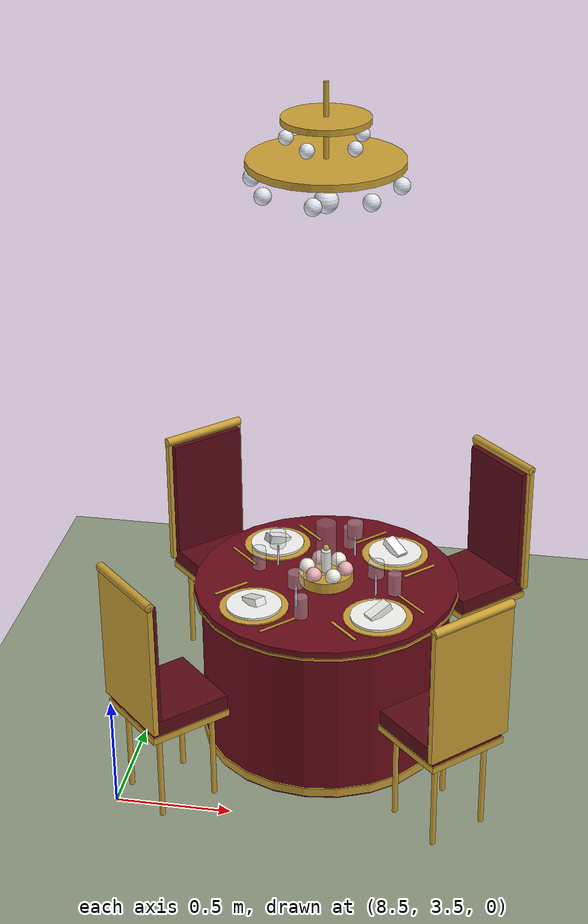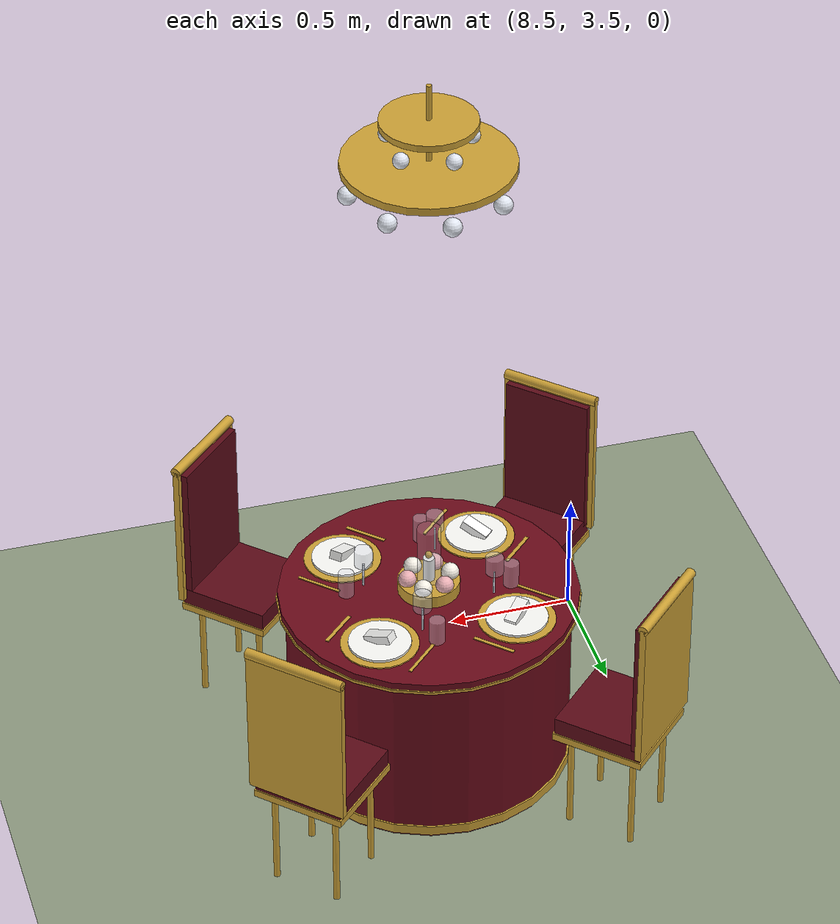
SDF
<sdf version="1.9">
 <world name="dar_tunibot">
  <model name="ground_plane">
   <static>true</static>
   <link name="link">
    <collision name="collision">
     <geometry><plane><normal>0 0 1</normal><size>60 60</size></plane></geometry>
    </collision>
    <visual name="visual">
     <geometry><plane><normal>0 0 1</normal><size>60 60</size></plane></geometry>
     <material><ambient>0.55 0.6 0.5 1</ambient><diffuse>0.55 0.6 0.5 1</diffuse></material>
    </visual>
   </link>
  </model>
  <model name="vip_2">
   <static>true</static>
   <pose>9.3 4.2 0 0 0 0</pose>
   <link name="link">
    <visual name="cloth_v">
     <pose>0.000 0.000 0.370 0.0000 0.0000 0.0000</pose>
     <geometry><cylinder><radius>0.550</radius><length>0.740</length></cylinder></geometry>
     <material>
      <ambient>0.42 0.04 0.1 1</ambient>
      <diffuse>0.42 0.04 0.1 1</diffuse>
      <specular>0.1 0.1 0.1 1</specular>
     </material>
    </visual>
    <collision name="cloth_c">
     <pose>0.000 0.000 0.370 0.0000 0.0000 0.0000</pose>
     <geometry><cylinder><radius>0.550</radius><length>0.740</length></cylinder></geometry>
    </collision>
    <visual name="drape_v">
     <pose>0.000 0.000 0.750 0.0000 0.0000 0.0000</pose>
     <geometry><cylinder><radius>0.580</radius><length>0.040</length></cylinder></geometry>
     <material>
      <ambient>0.42 0.04 0.1 1</ambient>
      <diffuse>0.42 0.04 0.1 1</diffuse>
      <specular>0.1 0.1 0.1 1</specular>
     </material>
    </visual>
    <visual name="hem_trim_v">
     <pose>0.000 0.000 0.030 0.0000 0.0000 0.0000</pose>
     <geometry><cylinder><radius>0.557</radius><length>0.040</length></cylinder></geometry>
     <material>
      <ambient>0.8 0.63 0.21 1</ambient>
      <diffuse>0.8 0.63 0.21 1</diffuse>
      <specular>0.1 0.1 0.1 1</specular>
     </material>
    </visual>
    <visual name="edge_trim_v">
     <pose>0.000 0.000 0.735 0.0000 0.0000 0.0000</pose>
     <geometry><cylinder><radius>0.585</radius><length>0.012</length></cylinder></geometry>
     <material>
      <ambient>0.8 0.63 0.21 1</ambient>
      <diffuse>0.8 0.63 0.21 1</diffuse>
      <specular>0.1 0.1 0.1 1</specular>
     </material>
    </visual>
    <visual name="bowl_v">
     <pose>0.000 0.000 0.795 0.0000 0.0000 0.0000</pose>
     <geometry><cylinder><radius>0.120</radius><length>0.050</length></cylinder></geometry>
     <material>
      <ambient>0.8 0.63 0.21 1</ambient>
      <diffuse>0.8 0.63 0.21 1</diffuse>
      <specular>0.1 0.1 0.1 1</specular>
     </material>
    </visual>
    <visual name="bowl_foot_v">
     <pose>0.000 0.000 0.775 0.0000 0.0000 0.0000</pose>
     <geometry><cylinder><radius>0.060</radius><length>0.020</length></cylinder></geometry>
     <material>
      <ambient>0.8 0.63 0.21 1</ambient>
      <diffuse>0.8 0.63 0.21 1</diffuse>
      <specular>0.1 0.1 0.1 1</specular>
     </material>
    </visual>
    <visual name="candle_v">
     <pose>0.000 0.000 0.870 0.0000 0.0000 0.0000</pose>
     <geometry><cylinder><radius>0.022</radius><length>0.100</length></cylinder></geometry>
     <material>
      <ambient>0.98 0.98 0.97 1</ambient>
      <diffuse>0.98 0.98 0.97 1</diffuse>
      <specular>0.1 0.1 0.1 1</specular>
     </material>
    </visual>
    <visual name="flame_v">
     <pose>0.000 0.000 0.935 0.0000 0.0000 0.0000</pose>
     <geometry><sphere><radius>0.014</radius></sphere></geometry>
     <material>
      <ambient>0.8 0.63 0.21 1</ambient>
      <diffuse>0.8 0.63 0.21 1</diffuse>
      <specular>0.1 0.1 0.1 1</specular>
      <emissive>1.0 0.6 0.2 1</emissive>
     </material>
    </visual>
    <visual name="hurricane_v">
     <pose>0.000 0.000 0.940 0.0000 0.0000 0.0000</pose>
     <geometry><cylinder><radius>0.045</radius><length>0.240</length></cylinder></geometry>
     <transparency>0.75</transparency>
     <material>
      <ambient>0.9 0.92 0.96 1</ambient>
      <diffuse>0.9 0.92 0.96 1</diffuse>
      <specular>0.1 0.1 0.1 1</specular>
     </material>
    </visual>
    <visual name="rose0_v">
     <pose>0.085 0.000 0.835 0.0000 0.0000 0.0000</pose>
     <geometry><sphere><radius>0.035</radius></sphere></geometry>
     <material>
      <ambient>0.93 0.7 0.72 1</ambient>
      <diffuse>0.93 0.7 0.72 1</diffuse>
      <specular>0.1 0.1 0.1 1</specular>
     </material>
    </visual>
    <visual name="rose1_v">
     <pose>0.043 0.074 0.835 0.0000 0.0000 0.0000</pose>
     <geometry><sphere><radius>0.035</radius></sphere></geometry>
     <material>
      <ambient>0.97 0.95 0.91 1</ambient>
      <diffuse>0.97 0.95 0.91 1</diffuse>
      <specular>0.1 0.1 0.1 1</specular>
     </material>
    </visual>
    <visual name="rose2_v">
     <pose>-0.042 0.074 0.835 0.0000 0.0000 0.0000</pose>
     <geometry><sphere><radius>0.035</radius></sphere></geometry>
     <material>
      <ambient>0.93 0.7 0.72 1</ambient>
      <diffuse>0.93 0.7 0.72 1</diffuse>
      <specular>0.1 0.1 0.1 1</specular>
     </material>
    </visual>
    <visual name="rose3_v">
     <pose>-0.085 0.000 0.835 0.0000 0.0000 0.0000</pose>
     <geometry><sphere><radius>0.035</radius></sphere></geometry>
     <material>
      <ambient>0.97 0.95 0.91 1</ambient>
      <diffuse>0.97 0.95 0.91 1</diffuse>
      <specular>0.1 0.1 0.1 1</specular>
     </material>
    </visual>
    <visual name="rose4_v">
     <pose>-0.043 -0.074 0.835 0.0000 0.0000 0.0000</pose>
     <geometry><sphere><radius>0.035</radius></sphere></geometry>
     <material>
      <ambient>0.93 0.7 0.72 1</ambient>
      <diffuse>0.93 0.7 0.72 1</diffuse>
      <specular>0.1 0.1 0.1 1</specular>
     </material>
    </visual>
    <visual name="rose5_v">
     <pose>0.043 -0.074 0.835 0.0000 0.0000 0.0000</pose>
     <geometry><sphere><radius>0.035</radius></sphere></geometry>
     <material>
      <ambient>0.97 0.95 0.91 1</ambient>
      <diffuse>0.97 0.95 0.91 1</diffuse>
      <specular>0.1 0.1 0.1 1</specular>
     </material>
    </visual>
    <collision name="seat0_c">
     <pose>0.580 0.580 0.225 0.0000 0.0000 0.0000</pose>
     <geometry><box><size>0.400 0.400 0.450</size></box></geometry>
    </collision>
    <visual name="seat_frame0_v">
     <pose>0.580 0.580 0.430 0.0000 0.0000 0.7854</pose>
     <geometry><box><size>0.370 0.370 0.030</size></box></geometry>
     <material>
      <ambient>0.8 0.63 0.21 1</ambient>
      <diffuse>0.8 0.63 0.21 1</diffuse>
      <specular>0.1 0.1 0.1 1</specular>
     </material>
    </visual>
    <visual name="cushion0_v">
     <pose>0.580 0.580 0.480 0.0000 0.0000 0.7854</pose>
     <geometry><box><size>0.360 0.360 0.070</size></box></geometry>
     <material>
      <ambient>0.36 0.04 0.09 1</ambient>
      <diffuse>0.36 0.04 0.09 1</diffuse>
      <specular>0.1 0.1 0.1 1</specular>
     </material>
    </visual>
    <visual name="back_frame0_v">
     <pose>0.707 0.707 0.780 0.0000 0.0000 0.7854</pose>
     <geometry><box><size>0.025 0.400 0.620</size></box></geometry>
     <material>
      <ambient>0.8 0.63 0.21 1</ambient>
      <diffuse>0.8 0.63 0.21 1</diffuse>
      <specular>0.1 0.1 0.1 1</specular>
     </material>
    </visual>
    <visual name="back0_v">
     <pose>0.697 0.697 0.780 0.0000 0.0000 0.7854</pose>
     <geometry><box><size>0.050 0.360 0.580</size></box></geometry>
     <material>
      <ambient>0.36 0.04 0.09 1</ambient>
      <diffuse>0.36 0.04 0.09 1</diffuse>
      <specular>0.1 0.1 0.1 1</specular>
     </material>
    </visual>
    <visual name="back_top0_v">
     <pose>0.707 0.707 1.090 1.5708 0.0000 0.7854</pose>
     <geometry><cylinder><radius>0.020</radius><length>0.400</length></cylinder></geometry>
     <material>
      <ambient>0.8 0.63 0.21 1</ambient>
      <diffuse>0.8 0.63 0.21 1</diffuse>
      <specular>0.1 0.1 0.1 1</specular>
     </material>
    </visual>
    <visual name="leg0_0_v">
     <pose>0.580 0.396 0.210 0.0000 0.0000 0.7854</pose>
     <geometry><cylinder><radius>0.012</radius><length>0.420</length></cylinder></geometry>
     <material>
      <ambient>0.8 0.63 0.21 1</ambient>
      <diffuse>0.8 0.63 0.21 1</diffuse>
      <specular>0.1 0.1 0.1 1</specular>
     </material>
    </visual>
    <visual name="leg0_1_v">
     <pose>0.396 0.580 0.210 0.0000 0.0000 0.7854</pose>
     <geometry><cylinder><radius>0.012</radius><length>0.420</length></cylinder></geometry>
     <material>
      <ambient>0.8 0.63 0.21 1</ambient>
      <diffuse>0.8 0.63 0.21 1</diffuse>
      <specular>0.1 0.1 0.1 1</specular>
     </material>
    </visual>
    <visual name="leg0_2_v">
     <pose>0.764 0.580 0.210 0.0000 0.0000 0.7854</pose>
     <geometry><cylinder><radius>0.012</radius><length>0.420</length></cylinder></geometry>
     <material>
      <ambient>0.8 0.63 0.21 1</ambient>
      <diffuse>0.8 0.63 0.21 1</diffuse>
      <specular>0.1 0.1 0.1 1</specular>
     </material>
    </visual>
    <visual name="leg0_3_v">
     <pose>0.580 0.764 0.210 0.0000 0.0000 0.7854</pose>
     <geometry><cylinder><radius>0.012</radius><length>0.420</length></cylinder></geometry>
     <material>
      <ambient>0.8 0.63 0.21 1</ambient>
      <diffuse>0.8 0.63 0.21 1</diffuse>
      <specular>0.1 0.1 0.1 1</specular>
     </material>
    </visual>
    <visual name="charger0_v">
     <pose>0.269 0.269 0.773 0.0000 0.0000 0.7854</pose>
     <geometry><cylinder><radius>0.150</radius><length>0.006</length></cylinder></geometry>
     <material>
      <ambient>0.8 0.63 0.21 1</ambient>
      <diffuse>0.8 0.63 0.21 1</diffuse>
      <specular>0.1 0.1 0.1 1</specular>
     </material>
    </visual>
    <visual name="plate0_v">
     <pose>0.269 0.269 0.781 0.0000 0.0000 0.7854</pose>
     <geometry><cylinder><radius>0.120</radius><length>0.010</length></cylinder></geometry>
     <material>
      <ambient>0.98 0.98 0.97 1</ambient>
      <diffuse>0.98 0.98 0.97 1</diffuse>
      <specular>0.1 0.1 0.1 1</specular>
     </material>
    </visual>
    <visual name="napkin0_v">
     <pose>0.269 0.269 0.803 0.3500 0.0000 0.7854</pose>
     <geometry><box><size>0.050 0.110 0.035</size></box></geometry>
     <material>
      <ambient>0.98 0.98 0.97 1</ambient>
      <diffuse>0.98 0.98 0.97 1</diffuse>
      <specular>0.1 0.1 0.1 1</specular>
     </material>
    </visual>
    <visual name="fork0_v">
     <pose>0.396 0.141 0.772 0.0000 0.0000 0.7854</pose>
     <geometry><box><size>0.170 0.014 0.004</size></box></geometry>
     <material>
      <ambient>0.8 0.63 0.21 1</ambient>
      <diffuse>0.8 0.63 0.21 1</diffuse>
      <specular>0.1 0.1 0.1 1</specular>
     </material>
    </visual>
    <visual name="knife0_v">
     <pose>0.141 0.396 0.772 0.0000 0.0000 0.7854</pose>
     <geometry><box><size>0.180 0.012 0.004</size></box></geometry>
     <material>
      <ambient>0.8 0.63 0.21 1</ambient>
      <diffuse>0.8 0.63 0.21 1</diffuse>
      <specular>0.1 0.1 0.1 1</specular>
     </material>
    </visual>
    <visual name="wine_stem0_v">
     <pose>0.092 0.233 0.820 0.0000 0.0000 0.7854</pose>
     <geometry><cylinder><radius>0.004</radius><length>0.100</length></cylinder></geometry>
     <material>
      <ambient>0.9 0.92 0.96 1</ambient>
      <diffuse>0.9 0.92 0.96 1</diffuse>
      <specular>0.1 0.1 0.1 1</specular>
     </material>
    </visual>
    <visual name="wine_bowl0_v">
     <pose>0.092 0.233 0.905 0.0000 0.0000 0.7854</pose>
     <geometry><cylinder><radius>0.035</radius><length>0.070</length></cylinder></geometry>
     <transparency>0.6</transparency>
     <material>
      <ambient>0.9 0.92 0.96 1</ambient>
      <diffuse>0.9 0.92 0.96 1</diffuse>
      <specular>0.1 0.1 0.1 1</specular>
     </material>
    </visual>
    <visual name="water0_v">
     <pose>0.057 0.311 0.820 0.0000 0.0000 0.7854</pose>
     <geometry><cylinder><radius>0.030</radius><length>0.100</length></cylinder></geometry>
     <transparency>0.6</transparency>
     <material>
      <ambient>0.9 0.92 0.96 1</ambient>
      <diffuse>0.9 0.92 0.96 1</diffuse>
      <specular>0.1 0.1 0.1 1</specular>
     </material>
    </visual>
    <collision name="seat1_c">
     <pose>-0.580 0.580 0.225 0.0000 0.0000 0.0000</pose>
     <geometry><box><size>0.400 0.400 0.450</size></box></geometry>
    </collision>
    <visual name="seat_frame1_v">
     <pose>-0.580 0.580 0.430 0.0000 0.0000 2.3562</pose>
     <geometry><box><size>0.370 0.370 0.030</size></box></geometry>
     <material>
      <ambient>0.8 0.63 0.21 1</ambient>
      <diffuse>0.8 0.63 0.21 1</diffuse>
      <specular>0.1 0.1 0.1 1</specular>
     </material>
    </visual>
    <visual name="cushion1_v">
     <pose>-0.580 0.580 0.480 0.0000 0.0000 2.3562</pose>
     <geometry><box><size>0.360 0.360 0.070</size></box></geometry>
     <material>
      <ambient>0.36 0.04 0.09 1</ambient>
      <diffuse>0.36 0.04 0.09 1</diffuse>
      <specular>0.1 0.1 0.1 1</specular>
     </material>
    </visual>
    <visual name="back_frame1_v">
     <pose>-0.707 0.707 0.780 0.0000 0.0000 2.3562</pose>
     <geometry><box><size>0.025 0.400 0.620</size></box></geometry>
     <material>
      <ambient>0.8 0.63 0.21 1</ambient>
      <diffuse>0.8 0.63 0.21 1</diffuse>
      <specular>0.1 0.1 0.1 1</specular>
     </material>
    </visual>
    <visual name="back1_v">
     <pose>-0.697 0.697 0.780 0.0000 0.0000 2.3562</pose>
     <geometry><box><size>0.050 0.360 0.580</size></box></geometry>
     <material>
      <ambient>0.36 0.04 0.09 1</ambient>
      <diffuse>0.36 0.04 0.09 1</diffuse>
      <specular>0.1 0.1 0.1 1</specular>
     </material>
    </visual>
    <visual name="back_top1_v">
     <pose>-0.707 0.707 1.090 1.5708 0.0000 2.3562</pose>
     <geometry><cylinder><radius>0.020</radius><length>0.400</length></cylinder></geometry>
     <material>
      <ambient>0.8 0.63 0.21 1</ambient>
      <diffuse>0.8 0.63 0.21 1</diffuse>
      <specular>0.1 0.1 0.1 1</specular>
     </material>
    </visual>
    <visual name="leg1_0_v">
     <pose>-0.396 0.580 0.210 0.0000 0.0000 2.3562</pose>
     <geometry><cylinder><radius>0.012</radius><length>0.420</length></cylinder></geometry>
     <material>
      <ambient>0.8 0.63 0.21 1</ambient>
      <diffuse>0.8 0.63 0.21 1</diffuse>
      <specular>0.1 0.1 0.1 1</specular>
     </material>
    </visual>
    <visual name="leg1_1_v">
     <pose>-0.580 0.396 0.210 0.0000 0.0000 2.3562</pose>
     <geometry><cylinder><radius>0.012</radius><length>0.420</length></cylinder></geometry>
     <material>
      <ambient>0.8 0.63 0.21 1</ambient>
      <diffuse>0.8 0.63 0.21 1</diffuse>
      <specular>0.1 0.1 0.1 1</specular>
     </material>
    </visual>
    <visual name="leg1_2_v">
     <pose>-0.580 0.764 0.210 0.0000 0.0000 2.3562</pose>
     <geometry><cylinder><radius>0.012</radius><length>0.420</length></cylinder></geometry>
     <material>
      <ambient>0.8 0.63 0.21 1</ambient>
      <diffuse>0.8 0.63 0.21 1</diffuse>
      <specular>0.1 0.1 0.1 1</specular>
     </material>
    </visual>
    <visual name="leg1_3_v">
     <pose>-0.764 0.580 0.210 0.0000 0.0000 2.3562</pose>
     <geometry><cylinder><radius>0.012</radius><length>0.420</length></cylinder></geometry>
     <material>
      <ambient>0.8 0.63 0.21 1</ambient>
      <diffuse>0.8 0.63 0.21 1</diffuse>
      <specular>0.1 0.1 0.1 1</specular>
     </material>
    </visual>
    <visual name="charger1_v">
     <pose>-0.269 0.269 0.773 0.0000 0.0000 2.3562</pose>
     <geometry><cylinder><radius>0.150</radius><length>0.006</length></cylinder></geometry>
     <material>
      <ambient>0.8 0.63 0.21 1</ambient>
      <diffuse>0.8 0.63 0.21 1</diffuse>
      <specular>0.1 0.1 0.1 1</specular>
     </material>
    </visual>
    <visual name="plate1_v">
     <pose>-0.269 0.269 0.781 0.0000 0.0000 2.3562</pose>
     <geometry><cylinder><radius>0.120</radius><length>0.010</length></cylinder></geometry>
     <material>
      <ambient>0.98 0.98 0.97 1</ambient>
      <diffuse>0.98 0.98 0.97 1</diffuse>
      <specular>0.1 0.1 0.1 1</specular>
     </material>
    </visual>
    <visual name="napkin1_v">
     <pose>-0.269 0.269 0.803 0.3500 0.0000 2.3562</pose>
     <geometry><box><size>0.050 0.110 0.035</size></box></geometry>
     <material>
      <ambient>0.98 0.98 0.97 1</ambient>
      <diffuse>0.98 0.98 0.97 1</diffuse>
      <specular>0.1 0.1 0.1 1</specular>
     </material>
    </visual>
    <visual name="fork1_v">
     <pose>-0.141 0.396 0.772 0.0000 0.0000 2.3562</pose>
     <geometry><box><size>0.170 0.014 0.004</size></box></geometry>
     <material>
      <ambient>0.8 0.63 0.21 1</ambient>
      <diffuse>0.8 0.63 0.21 1</diffuse>
      <specular>0.1 0.1 0.1 1</specular>
     </material>
    </visual>
    <visual name="knife1_v">
     <pose>-0.396 0.141 0.772 0.0000 0.0000 2.3562</pose>
     <geometry><box><size>0.180 0.012 0.004</size></box></geometry>
     <material>
      <ambient>0.8 0.63 0.21 1</ambient>
      <diffuse>0.8 0.63 0.21 1</diffuse>
      <specular>0.1 0.1 0.1 1</specular>
     </material>
    </visual>
    <visual name="wine_stem1_v">
     <pose>-0.233 0.092 0.820 0.0000 0.0000 2.3562</pose>
     <geometry><cylinder><radius>0.004</radius><length>0.100</length></cylinder></geometry>
     <material>
      <ambient>0.9 0.92 0.96 1</ambient>
      <diffuse>0.9 0.92 0.96 1</diffuse>
      <specular>0.1 0.1 0.1 1</specular>
     </material>
    </visual>
    <visual name="wine_bowl1_v">
     <pose>-0.233 0.092 0.905 0.0000 0.0000 2.3562</pose>
     <geometry><cylinder><radius>0.035</radius><length>0.070</length></cylinder></geometry>
     <transparency>0.6</transparency>
     <material>
      <ambient>0.9 0.92 0.96 1</ambient>
      <diffuse>0.9 0.92 0.96 1</diffuse>
      <specular>0.1 0.1 0.1 1</specular>
     </material>
    </visual>
    <visual name="water1_v">
     <pose>-0.311 0.057 0.820 0.0000 0.0000 2.3562</pose>
     <geometry><cylinder><radius>0.030</radius><length>0.100</length></cylinder></geometry>
     <transparency>0.6</transparency>
     <material>
      <ambient>0.9 0.92 0.96 1</ambient>
      <diffuse>0.9 0.92 0.96 1</diffuse>
      <specular>0.1 0.1 0.1 1</specular>
     </material>
    </visual>
    <collision name="seat2_c">
     <pose>-0.580 -0.580 0.225 0.0000 0.0000 0.0000</pose>
     <geometry><box><size>0.400 0.400 0.450</size></box></geometry>
    </collision>
    <visual name="seat_frame2_v">
     <pose>-0.580 -0.580 0.430 0.0000 0.0000 3.9270</pose>
     <geometry><box><size>0.370 0.370 0.030</size></box></geometry>
     <material>
      <ambient>0.8 0.63 0.21 1</ambient>
      <diffuse>0.8 0.63 0.21 1</diffuse>
      <specular>0.1 0.1 0.1 1</specular>
     </material>
    </visual>
    <visual name="cushion2_v">
     <pose>-0.580 -0.580 0.480 0.0000 0.0000 3.9270</pose>
     <geometry><box><size>0.360 0.360 0.070</size></box></geometry>
     <material>
      <ambient>0.36 0.04 0.09 1</ambient>
      <diffuse>0.36 0.04 0.09 1</diffuse>
      <specular>0.1 0.1 0.1 1</specular>
     </material>
    </visual>
    <visual name="back_frame2_v">
     <pose>-0.707 -0.707 0.780 0.0000 0.0000 3.9270</pose>
     <geometry><box><size>0.025 0.400 0.620</size></box></geometry>
     <material>
      <ambient>0.8 0.63 0.21 1</ambient>
      <diffuse>0.8 0.63 0.21 1</diffuse>
      <specular>0.1 0.1 0.1 1</specular>
     </material>
    </visual>
    <visual name="back2_v">
     <pose>-0.697 -0.697 0.780 0.0000 0.0000 3.9270</pose>
     <geometry><box><size>0.050 0.360 0.580</size></box></geometry>
     <material>
      <ambient>0.36 0.04 0.09 1</ambient>
      <diffuse>0.36 0.04 0.09 1</diffuse>
      <specular>0.1 0.1 0.1 1</specular>
     </material>
    </visual>
    <visual name="back_top2_v">
     <pose>-0.707 -0.707 1.090 1.5708 0.0000 3.9270</pose>
     <geometry><cylinder><radius>0.020</radius><length>0.400</length></cylinder></geometry>
     <material>
      <ambient>0.8 0.63 0.21 1</ambient>
      <diffuse>0.8 0.63 0.21 1</diffuse>
      <specular>0.1 0.1 0.1 1</specular>
     </material>
    </visual>
    <visual name="leg2_0_v">
     <pose>-0.580 -0.396 0.210 0.0000 0.0000 3.9270</pose>
     <geometry><cylinder><radius>0.012</radius><length>0.420</length></cylinder></geometry>
     <material>
      <ambient>0.8 0.63 0.21 1</ambient>
      <diffuse>0.8 0.63 0.21 1</diffuse>
      <specular>0.1 0.1 0.1 1</specular>
     </material>
    </visual>
    <visual name="leg2_1_v">
     <pose>-0.396 -0.580 0.210 0.0000 0.0000 3.9270</pose>
     <geometry><cylinder><radius>0.012</radius><length>0.420</length></cylinder></geometry>
     <material>
      <ambient>0.8 0.63 0.21 1</ambient>
      <diffuse>0.8 0.63 0.21 1</diffuse>
      <specular>0.1 0.1 0.1 1</specular>
     </material>
    </visual>
    <visual name="leg2_2_v">
     <pose>-0.764 -0.580 0.210 0.0000 0.0000 3.9270</pose>
     <geometry><cylinder><radius>0.012</radius><length>0.420</length></cylinder></geometry>
     <material>
      <ambient>0.8 0.63 0.21 1</ambient>
      <diffuse>0.8 0.63 0.21 1</diffuse>
      <specular>0.1 0.1 0.1 1</specular>
     </material>
    </visual>
    <visual name="leg2_3_v">
     <pose>-0.580 -0.764 0.210 0.0000 0.0000 3.9270</pose>
     <geometry><cylinder><radius>0.012</radius><length>0.420</length></cylinder></geometry>
     <material>
      <ambient>0.8 0.63 0.21 1</ambient>
      <diffuse>0.8 0.63 0.21 1</diffuse>
      <specular>0.1 0.1 0.1 1</specular>
     </material>
    </visual>
    <visual name="charger2_v">
     <pose>-0.269 -0.269 0.773 0.0000 0.0000 3.9270</pose>
     <geometry><cylinder><radius>0.150</radius><length>0.006</length></cylinder></geometry>
     <material>
      <ambient>0.8 0.63 0.21 1</ambient>
      <diffuse>0.8 0.63 0.21 1</diffuse>
      <specular>0.1 0.1 0.1 1</specular>
     </material>
    </visual>
    <visual name="plate2_v">
     <pose>-0.269 -0.269 0.781 0.0000 0.0000 3.9270</pose>
     <geometry><cylinder><radius>0.120</radius><length>0.010</length></cylinder></geometry>
     <material>
      <ambient>0.98 0.98 0.97 1</ambient>
      <diffuse>0.98 0.98 0.97 1</diffuse>
      <specular>0.1 0.1 0.1 1</specular>
     </material>
    </visual>
    <visual name="napkin2_v">
     <pose>-0.269 -0.269 0.803 0.3500 0.0000 3.9270</pose>
     <geometry><box><size>0.050 0.110 0.035</size></box></geometry>
     <material>
      <ambient>0.98 0.98 0.97 1</ambient>
      <diffuse>0.98 0.98 0.97 1</diffuse>
      <specular>0.1 0.1 0.1 1</specular>
     </material>
    </visual>
    <visual name="fork2_v">
     <pose>-0.396 -0.141 0.772 0.0000 0.0000 3.9270</pose>
     <geometry><box><size>0.170 0.014 0.004</size></box></geometry>
     <material>
      <ambient>0.8 0.63 0.21 1</ambient>
      <diffuse>0.8 0.63 0.21 1</diffuse>
      <specular>0.1 0.1 0.1 1</specular>
     </material>
    </visual>
    <visual name="knife2_v">
     <pose>-0.141 -0.396 0.772 0.0000 0.0000 3.9270</pose>
     <geometry><box><size>0.180 0.012 0.004</size></box></geometry>
     <material>
      <ambient>0.8 0.63 0.21 1</ambient>
      <diffuse>0.8 0.63 0.21 1</diffuse>
      <specular>0.1 0.1 0.1 1</specular>
     </material>
    </visual>
    <visual name="wine_stem2_v">
     <pose>-0.092 -0.233 0.820 0.0000 0.0000 3.9270</pose>
     <geometry><cylinder><radius>0.004</radius><length>0.100</length></cylinder></geometry>
     <material>
      <ambient>0.9 0.92 0.96 1</ambient>
      <diffuse>0.9 0.92 0.96 1</diffuse>
      <specular>0.1 0.1 0.1 1</specular>
     </material>
    </visual>
    <visual name="wine_bowl2_v">
     <pose>-0.092 -0.233 0.905 0.0000 0.0000 3.9270</pose>
     <geometry><cylinder><radius>0.035</radius><length>0.070</length></cylinder></geometry>
     <transparency>0.6</transparency>
     <material>
      <ambient>0.9 0.92 0.96 1</ambient>
      <diffuse>0.9 0.92 0.96 1</diffuse>
      <specular>0.1 0.1 0.1 1</specular>
     </material>
    </visual>
    <visual name="water2_v">
     <pose>-0.057 -0.311 0.820 0.0000 0.0000 3.9270</pose>
     <geometry><cylinder><radius>0.030</radius><length>0.100</length></cylinder></geometry>
     <transparency>0.6</transparency>
     <material>
      <ambient>0.9 0.92 0.96 1</ambient>
      <diffuse>0.9 0.92 0.96 1</diffuse>
      <specular>0.1 0.1 0.1 1</specular>
     </material>
    </visual>
    <collision name="seat3_c">
     <pose>0.580 -0.580 0.225 0.0000 0.0000 0.0000</pose>
     <geometry><box><size>0.400 0.400 0.450</size></box></geometry>
    </collision>
    <visual name="seat_frame3_v">
     <pose>0.580 -0.580 0.430 0.0000 0.0000 5.4978</pose>
     <geometry><box><size>0.370 0.370 0.030</size></box></geometry>
     <material>
      <ambient>0.8 0.63 0.21 1</ambient>
      <diffuse>0.8 0.63 0.21 1</diffuse>
      <specular>0.1 0.1 0.1 1</specular>
     </material>
    </visual>
    <visual name="cushion3_v">
     <pose>0.580 -0.580 0.480 0.0000 0.0000 5.4978</pose>
     <geometry><box><size>0.360 0.360 0.070</size></box></geometry>
     <material>
      <ambient>0.36 0.04 0.09 1</ambient>
      <diffuse>0.36 0.04 0.09 1</diffuse>
      <specular>0.1 0.1 0.1 1</specular>
     </material>
    </visual>
    <visual name="back_frame3_v">
     <pose>0.707 -0.707 0.780 0.0000 0.0000 5.4978</pose>
     <geometry><box><size>0.025 0.400 0.620</size></box></geometry>
     <material>
      <ambient>0.8 0.63 0.21 1</ambient>
      <diffuse>0.8 0.63 0.21 1</diffuse>
      <specular>0.1 0.1 0.1 1</specular>
     </material>
    </visual>
    <visual name="back3_v">
     <pose>0.697 -0.697 0.780 0.0000 0.0000 5.4978</pose>
     <geometry><box><size>0.050 0.360 0.580</size></box></geometry>
     <material>
      <ambient>0.36 0.04 0.09 1</ambient>
      <diffuse>0.36 0.04 0.09 1</diffuse>
      <specular>0.1 0.1 0.1 1</specular>
     </material>
    </visual>
    <visual name="back_top3_v">
     <pose>0.707 -0.707 1.090 1.5708 0.0000 5.4978</pose>
     <geometry><cylinder><radius>0.020</radius><length>0.400</length></cylinder></geometry>
     <material>
      <ambient>0.8 0.63 0.21 1</ambient>
      <diffuse>0.8 0.63 0.21 1</diffuse>
      <specular>0.1 0.1 0.1 1</specular>
     </material>
    </visual>
    <visual name="leg3_0_v">
     <pose>0.396 -0.580 0.210 0.0000 0.0000 5.4978</pose>
     <geometry><cylinder><radius>0.012</radius><length>0.420</length></cylinder></geometry>
     <material>
      <ambient>0.8 0.63 0.21 1</ambient>
      <diffuse>0.8 0.63 0.21 1</diffuse>
      <specular>0.1 0.1 0.1 1</specular>
     </material>
    </visual>
    <visual name="leg3_1_v">
     <pose>0.580 -0.396 0.210 0.0000 0.0000 5.4978</pose>
     <geometry><cylinder><radius>0.012</radius><length>0.420</length></cylinder></geometry>
     <material>
      <ambient>0.8 0.63 0.21 1</ambient>
      <diffuse>0.8 0.63 0.21 1</diffuse>
      <specular>0.1 0.1 0.1 1</specular>
     </material>
    </visual>
    <visual name="leg3_2_v">
     <pose>0.580 -0.764 0.210 0.0000 0.0000 5.4978</pose>
     <geometry><cylinder><radius>0.012</radius><length>0.420</length></cylinder></geometry>
     <material>
      <ambient>0.8 0.63 0.21 1</ambient>
      <diffuse>0.8 0.63 0.21 1</diffuse>
      <specular>0.1 0.1 0.1 1</specular>
     </material>
    </visual>
    <visual name="leg3_3_v">
     <pose>0.764 -0.580 0.210 0.0000 0.0000 5.4978</pose>
     <geometry><cylinder><radius>0.012</radius><length>0.420</length></cylinder></geometry>
     <material>
      <ambient>0.8 0.63 0.21 1</ambient>
      <diffuse>0.8 0.63 0.21 1</diffuse>
      <specular>0.1 0.1 0.1 1</specular>
     </material>
    </visual>
    <visual name="charger3_v">
     <pose>0.269 -0.269 0.773 0.0000 0.0000 5.4978</pose>
     <geometry><cylinder><radius>0.150</radius><length>0.006</length></cylinder></geometry>
     <material>
      <ambient>0.8 0.63 0.21 1</ambient>
      <diffuse>0.8 0.63 0.21 1</diffuse>
      <specular>0.1 0.1 0.1 1</specular>
     </material>
    </visual>
    <visual name="plate3_v">
     <pose>0.269 -0.269 0.781 0.0000 0.0000 5.4978</pose>
     <geometry><cylinder><radius>0.120</radius><length>0.010</length></cylinder></geometry>
     <material>
      <ambient>0.98 0.98 0.97 1</ambient>
      <diffuse>0.98 0.98 0.97 1</diffuse>
      <specular>0.1 0.1 0.1 1</specular>
     </material>
    </visual>
    <visual name="napkin3_v">
     <pose>0.269 -0.269 0.803 0.3500 0.0000 5.4978</pose>
     <geometry><box><size>0.050 0.110 0.035</size></box></geometry>
     <material>
      <ambient>0.98 0.98 0.97 1</ambient>
      <diffuse>0.98 0.98 0.97 1</diffuse>
      <specular>0.1 0.1 0.1 1</specular>
     </material>
    </visual>
    <visual name="fork3_v">
     <pose>0.141 -0.396 0.772 0.0000 0.0000 5.4978</pose>
     <geometry><box><size>0.170 0.014 0.004</size></box></geometry>
     <material>
      <ambient>0.8 0.63 0.21 1</ambient>
      <diffuse>0.8 0.63 0.21 1</diffuse>
      <specular>0.1 0.1 0.1 1</specular>
     </material>
    </visual>
    <visual name="knife3_v">
     <pose>0.396 -0.141 0.772 0.0000 0.0000 5.4978</pose>
     <geometry><box><size>0.180 0.012 0.004</size></box></geometry>
     <material>
      <ambient>0.8 0.63 0.21 1</ambient>
      <diffuse>0.8 0.63 0.21 1</diffuse>
      <specular>0.1 0.1 0.1 1</specular>
     </material>
    </visual>
    <visual name="wine_stem3_v">
     <pose>0.233 -0.092 0.820 0.0000 0.0000 5.4978</pose>
     <geometry><cylinder><radius>0.004</radius><length>0.100</length></cylinder></geometry>
     <material>
      <ambient>0.9 0.92 0.96 1</ambient>
      <diffuse>0.9 0.92 0.96 1</diffuse>
      <specular>0.1 0.1 0.1 1</specular>
     </material>
    </visual>
    <visual name="wine_bowl3_v">
     <pose>0.233 -0.092 0.905 0.0000 0.0000 5.4978</pose>
     <geometry><cylinder><radius>0.035</radius><length>0.070</length></cylinder></geometry>
     <transparency>0.6</transparency>
     <material>
      <ambient>0.9 0.92 0.96 1</ambient>
      <diffuse>0.9 0.92 0.96 1</diffuse>
      <specular>0.1 0.1 0.1 1</specular>
     </material>
    </visual>
    <visual name="water3_v">
     <pose>0.311 -0.057 0.820 0.0000 0.0000 5.4978</pose>
     <geometry><cylinder><radius>0.030</radius><length>0.100</length></cylinder></geometry>
     <transparency>0.6</transparency>
     <material>
      <ambient>0.9 0.92 0.96 1</ambient>
      <diffuse>0.9 0.92 0.96 1</diffuse>
      <specular>0.1 0.1 0.1 1</specular>
     </material>
    </visual>
    <visual name="chand_rod_v">
     <pose>0.000 0.000 2.750 0.0000 0.0000 0.0000</pose>
     <geometry><cylinder><radius>0.010</radius><length>0.500</length></cylinder></geometry>
     <material>
      <ambient>0.8 0.63 0.21 1</ambient>
      <diffuse>0.8 0.63 0.21 1</diffuse>
      <specular>0.1 0.1 0.1 1</specular>
     </material>
    </visual>
    <visual name="chand_ring_v">
     <pose>0.000 0.000 2.680 0.0000 0.0000 0.0000</pose>
     <geometry><cylinder><radius>0.320</radius><length>0.030</length></cylinder></geometry>
     <material>
      <ambient>0.8 0.63 0.21 1</ambient>
      <diffuse>0.8 0.63 0.21 1</diffuse>
      <specular>0.1 0.1 0.1 1</specular>
     </material>
    </visual>
    <visual name="chand_ring_top_v">
     <pose>0.000 0.000 2.850 0.0000 0.0000 0.0000</pose>
     <geometry><cylinder><radius>0.180</radius><length>0.025</length></cylinder></geometry>
     <material>
      <ambient>0.8 0.63 0.21 1</ambient>
      <diffuse>0.8 0.63 0.21 1</diffuse>
      <specular>0.1 0.1 0.1 1</specular>
     </material>
    </visual>
    <visual name="chand_drop_v">
     <pose>0.000 0.000 2.520 0.0000 0.0000 0.0000</pose>
     <geometry><sphere><radius>0.050</radius></sphere></geometry>
     <material>
      <ambient>0.9 0.92 0.96 1</ambient>
      <diffuse>0.9 0.92 0.96 1</diffuse>
      <specular>0.1 0.1 0.1 1</specular>
      <emissive>0.55 0.52 0.45 1</emissive>
     </material>
    </visual>
    <visual name="crystal0_0_v">
     <pose>0.300 0.000 2.600 0.0000 0.0000 0.0000</pose>
     <geometry><sphere><radius>0.035</radius></sphere></geometry>
     <material>
      <ambient>0.9 0.92 0.96 1</ambient>
      <diffuse>0.9 0.92 0.96 1</diffuse>
      <specular>0.1 0.1 0.1 1</specular>
      <emissive>0.55 0.52 0.45 1</emissive>
     </material>
    </visual>
    <visual name="crystal0_1_v">
     <pose>0.212 0.212 2.600 0.0000 0.0000 0.0000</pose>
     <geometry><sphere><radius>0.035</radius></sphere></geometry>
     <material>
      <ambient>0.9 0.92 0.96 1</ambient>
      <diffuse>0.9 0.92 0.96 1</diffuse>
      <specular>0.1 0.1 0.1 1</specular>
      <emissive>0.55 0.52 0.45 1</emissive>
     </material>
    </visual>
    <visual name="crystal0_2_v">
     <pose>0.000 0.300 2.600 0.0000 0.0000 0.0000</pose>
     <geometry><sphere><radius>0.035</radius></sphere></geometry>
     <material>
      <ambient>0.9 0.92 0.96 1</ambient>
      <diffuse>0.9 0.92 0.96 1</diffuse>
      <specular>0.1 0.1 0.1 1</specular>
      <emissive>0.55 0.52 0.45 1</emissive>
     </material>
    </visual>
    <visual name="crystal0_3_v">
     <pose>-0.212 0.212 2.600 0.0000 0.0000 0.0000</pose>
     <geometry><sphere><radius>0.035</radius></sphere></geometry>
     <material>
      <ambient>0.9 0.92 0.96 1</ambient>
      <diffuse>0.9 0.92 0.96 1</diffuse>
      <specular>0.1 0.1 0.1 1</specular>
      <emissive>0.55 0.52 0.45 1</emissive>
     </material>
    </visual>
    <visual name="crystal0_4_v">
     <pose>-0.300 0.000 2.600 0.0000 0.0000 0.0000</pose>
     <geometry><sphere><radius>0.035</radius></sphere></geometry>
     <material>
      <ambient>0.9 0.92 0.96 1</ambient>
      <diffuse>0.9 0.92 0.96 1</diffuse>
      <specular>0.1 0.1 0.1 1</specular>
      <emissive>0.55 0.52 0.45 1</emissive>
     </material>
    </visual>
    <visual name="crystal0_5_v">
     <pose>-0.212 -0.212 2.600 0.0000 0.0000 0.0000</pose>
     <geometry><sphere><radius>0.035</radius></sphere></geometry>
     <material>
      <ambient>0.9 0.92 0.96 1</ambient>
      <diffuse>0.9 0.92 0.96 1</diffuse>
      <specular>0.1 0.1 0.1 1</specular>
      <emissive>0.55 0.52 0.45 1</emissive>
     </material>
    </visual>
    <visual name="crystal0_6_v">
     <pose>-0.000 -0.300 2.600 0.0000 0.0000 0.0000</pose>
     <geometry><sphere><radius>0.035</radius></sphere></geometry>
     <material>
      <ambient>0.9 0.92 0.96 1</ambient>
      <diffuse>0.9 0.92 0.96 1</diffuse>
      <specular>0.1 0.1 0.1 1</specular>
      <emissive>0.55 0.52 0.45 1</emissive>
     </material>
    </visual>
    <visual name="crystal0_7_v">
     <pose>0.212 -0.212 2.600 0.0000 0.0000 0.0000</pose>
     <geometry><sphere><radius>0.035</radius></sphere></geometry>
     <material>
      <ambient>0.9 0.92 0.96 1</ambient>
      <diffuse>0.9 0.92 0.96 1</diffuse>
      <specular>0.1 0.1 0.1 1</specular>
      <emissive>0.55 0.52 0.45 1</emissive>
     </material>
    </visual>
    <visual name="crystal1_0_v">
     <pose>0.129 0.094 2.770 0.0000 0.0000 0.0000</pose>
     <geometry><sphere><radius>0.030</radius></sphere></geometry>
     <material>
      <ambient>0.9 0.92 0.96 1</ambient>
      <diffuse>0.9 0.92 0.96 1</diffuse>
      <specular>0.1 0.1 0.1 1</specular>
      <emissive>0.55 0.52 0.45 1</emissive>
     </material>
    </visual>
    <visual name="crystal1_1_v">
     <pose>-0.049 0.152 2.770 0.0000 0.0000 0.0000</pose>
     <geometry><sphere><radius>0.030</radius></sphere></geometry>
     <material>
      <ambient>0.9 0.92 0.96 1</ambient>
      <diffuse>0.9 0.92 0.96 1</diffuse>
      <specular>0.1 0.1 0.1 1</specular>
      <emissive>0.55 0.52 0.45 1</emissive>
     </material>
    </visual>
    <visual name="crystal1_2_v">
     <pose>-0.160 0.000 2.770 0.0000 0.0000 0.0000</pose>
     <geometry><sphere><radius>0.030</radius></sphere></geometry>
     <material>
      <ambient>0.9 0.92 0.96 1</ambient>
      <diffuse>0.9 0.92 0.96 1</diffuse>
      <specular>0.1 0.1 0.1 1</specular>
      <emissive>0.55 0.52 0.45 1</emissive>
     </material>
    </visual>
    <visual name="crystal1_3_v">
     <pose>-0.049 -0.152 2.770 0.0000 0.0000 0.0000</pose>
     <geometry><sphere><radius>0.030</radius></sphere></geometry>
     <material>
      <ambient>0.9 0.92 0.96 1</ambient>
      <diffuse>0.9 0.92 0.96 1</diffuse>
      <specular>0.1 0.1 0.1 1</specular>
      <emissive>0.55 0.52 0.45 1</emissive>
     </material>
    </visual>
    <visual name="crystal1_4_v">
     <pose>0.129 -0.094 2.770 0.0000 0.0000 0.0000</pose>
     <geometry><sphere><radius>0.030</radius></sphere></geometry>
     <material>
      <ambient>0.9 0.92 0.96 1</ambient>
      <diffuse>0.9 0.92 0.96 1</diffuse>
      <specular>0.1 0.1 0.1 1</specular>
      <emissive>0.55 0.52 0.45 1</emissive>
     </material>
    </visual>
   </link>
  </model>
 </world>
</sdf>
